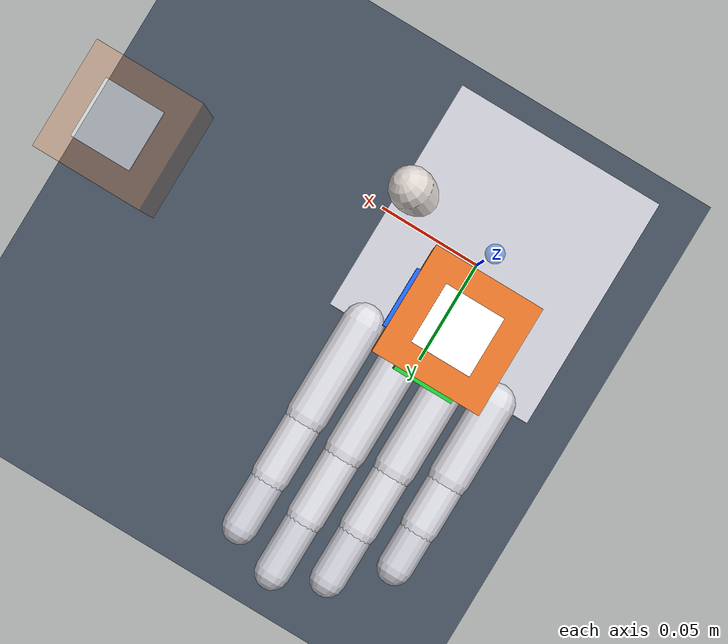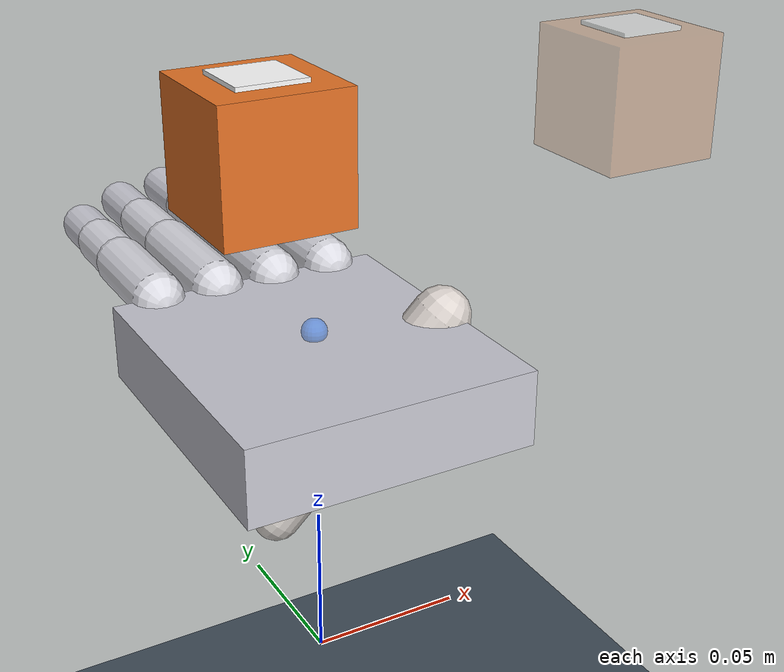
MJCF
<mujoco model="ffai_dexhand_inhand">
  <compiler angle="radian" autolimits="true"/>
  <option timestep="0.002" integrator="implicitfast" cone="elliptic" impratio="10">
    <flag multiccd="enable"/>
  </option>

  <visual>
    <global offwidth="1280" offheight="720"/>
    <quality shadowsize="2048"/>
    <headlight diffuse="0.7 0.7 0.7" ambient="0.35 0.35 0.35" specular="0.2 0.2 0.2"/>
  </visual>

  <default>
    <geom friction="1.0 0.02 0.001" solref="0.01 1" solimp="0.95 0.99 0.001"/>
    <joint type="hinge" damping="0.05" armature="0.002" frictionloss="0.002"/>
  </default>

  <asset>
    <texture name="sky" type="skybox" builtin="gradient" rgb1="0.5 0.7 0.9" rgb2="0.1 0.15 0.25" width="256" height="256"/>
    <texture name="grid" type="2d" builtin="checker" rgb1="0.2 0.25 0.3" rgb2="0.3 0.35 0.4" width="300" height="300"/>
    <material name="grid" texture="grid" texrepeat="6 6" reflectance="0.1"/>
    <material name="cube" rgba="0.90 0.45 0.15 1" reflectance="0.05"/>
  </asset>

  <worldbody>
    <light name="top" pos="0 0 0.6" dir="0 0 -1" diffuse="0.8 0.8 0.8"/>
    <light name="side" pos="0.4 -0.3 0.5" dir="-0.5 0.4 -0.7" diffuse="0.4 0.4 0.4"/>
    <geom name="floor" type="plane" pos="0 0 -0.15" size="1 1 0.05" material="grid"/>

    <!-- Mounted palm, fingers pointing up (+Y), palm facing camera (+Z). -->
    <body name="palm" pos="0 0 0.10">
      <geom name="palm" type="box" size="0.045 0.05 0.012" rgba="0.78 0.78 0.82 1"/>
      <site name="palm_center" pos="0 0 0.0140" size="0.004" rgba="0.2 0.5 1 0.5"/>

      <body name="index_prox" pos="0.0300 0.0500 0.0120">
        <joint name="index_abd" axis="0 0 1" range="-0.35 0.35"/>
        <joint name="index_mcp" axis="1 0 0" range="-0.2 1.6"/>
        <geom type="capsule" fromto="0 0 0 0 0.0420 0" size="0.0085" rgba="0.85 0.85 0.88 1"/>
        <body name="index_mid" pos="0 0.0420 0">
          <joint name="index_pip" axis="1 0 0" range="0 1.7"/>
          <geom type="capsule" fromto="0 0 0 0 0.0273 0" size="0.0078" rgba="0.85 0.85 0.88 1"/>
          <body name="index_dist" pos="0 0.0273 0">
            <joint name="index_dip" axis="1 0 0" range="0 1.6"/>
            <geom type="capsule" fromto="0 0 0 0 0.0231 0" size="0.0072" rgba="0.80 0.80 0.84 1"/>
            <site name="index_tip" pos="0 0.0231 0" size="0.006" rgba="0.1 0.8 0.3 0.6"/>
          </body>
        </body>
      </body>

      <body name="middle_prox" pos="0.0100 0.0500 0.0120">
        <joint name="middle_abd" axis="0 0 1" range="-0.35 0.35"/>
        <joint name="middle_mcp" axis="1 0 0" range="-0.2 1.6"/>
        <geom type="capsule" fromto="0 0 0 0 0.0460 0" size="0.0085" rgba="0.85 0.85 0.88 1"/>
        <body name="middle_mid" pos="0 0.0460 0">
          <joint name="middle_pip" axis="1 0 0" range="0 1.7"/>
          <geom type="capsule" fromto="0 0 0 0 0.0299 0" size="0.0078" rgba="0.85 0.85 0.88 1"/>
          <body name="middle_dist" pos="0 0.0299 0">
            <joint name="middle_dip" axis="1 0 0" range="0 1.6"/>
            <geom type="capsule" fromto="0 0 0 0 0.0253 0" size="0.0072" rgba="0.80 0.80 0.84 1"/>
            <site name="middle_tip" pos="0 0.0253 0" size="0.006" rgba="0.1 0.8 0.3 0.6"/>
          </body>
        </body>
      </body>

      <body name="ring_prox" pos="-0.0100 0.0500 0.0120">
        <joint name="ring_abd" axis="0 0 1" range="-0.35 0.35"/>
        <joint name="ring_mcp" axis="1 0 0" range="-0.2 1.6"/>
        <geom type="capsule" fromto="0 0 0 0 0.0420 0" size="0.0085" rgba="0.85 0.85 0.88 1"/>
        <body name="ring_mid" pos="0 0.0420 0">
          <joint name="ring_pip" axis="1 0 0" range="0 1.7"/>
          <geom type="capsule" fromto="0 0 0 0 0.0273 0" size="0.0078" rgba="0.85 0.85 0.88 1"/>
          <body name="ring_dist" pos="0 0.0273 0">
            <joint name="ring_dip" axis="1 0 0" range="0 1.6"/>
            <geom type="capsule" fromto="0 0 0 0 0.0231 0" size="0.0072" rgba="0.80 0.80 0.84 1"/>
            <site name="ring_tip" pos="0 0.0231 0" size="0.006" rgba="0.1 0.8 0.3 0.6"/>
          </body>
        </body>
      </body>

      <body name="pinky_prox" pos="-0.0300 0.0500 0.0120">
        <joint name="pinky_abd" axis="0 0 1" range="-0.35 0.35"/>
        <joint name="pinky_mcp" axis="1 0 0" range="-0.2 1.6"/>
        <geom type="capsule" fromto="0 0 0 0 0.0340 0" size="0.0085" rgba="0.85 0.85 0.88 1"/>
        <body name="pinky_mid" pos="0 0.0340 0">
          <joint name="pinky_pip" axis="1 0 0" range="0 1.7"/>
          <geom type="capsule" fromto="0 0 0 0 0.0221 0" size="0.0078" rgba="0.85 0.85 0.88 1"/>
          <body name="pinky_dist" pos="0 0.0221 0">
            <joint name="pinky_dip" axis="1 0 0" range="0 1.6"/>
            <geom type="capsule" fromto="0 0 0 0 0.0187 0" size="0.0072" rgba="0.80 0.80 0.84 1"/>
            <site name="pinky_tip" pos="0 0.0187 0" size="0.006" rgba="0.1 0.8 0.3 0.6"/>
          </body>
        </body>
      </body>

      <body name="thumb_prox" pos="0.0410 -0.005 0.0120" euler="0 -0.9 1.4">
        <joint name="thumb_cmc_abd" axis="0 0 1" range="-0.2 1.2"/>
        <joint name="thumb_cmc_flex" axis="1 0 0" range="-0.2 1.0"/>
        <geom type="capsule" fromto="0 0 0 0 0.0380 0" size="0.0094" rgba="0.85 0.82 0.80 1"/>
        <body name="thumb_mid" pos="0 0.0380 0">
          <joint name="thumb_mcp" axis="1 0 0" range="0 1.3"/>
          <geom type="capsule" fromto="0 0 0 0 0.0247 0" size="0.0085" rgba="0.85 0.82 0.80 1"/>
          <body name="thumb_dist" pos="0 0.0247 0">
            <joint name="thumb_ip" axis="1 0 0" range="0 1.4"/>
            <geom type="capsule" fromto="0 0 0 0 0.0209 0" size="0.0077" rgba="0.80 0.78 0.76 1"/>
            <site name="thumb_tip" pos="0 0.0209 0" size="0.006" rgba="0.1 0.8 0.3 0.6"/>
          </body>
        </body>
      </body>
    </body>

    <!-- Manipulated object: a cube with a free joint, resting on the fingers. -->
    <body name="object" pos="0 0.035 0.16">
      <freejoint name="object_free"/>
      <geom name="object" type="box" size="0.022 0.022 0.022" material="cube" mass="0.05"/>
      <site name="obj_site" pos="0 0 0" size="0.004" rgba="1 1 1 0.4"/>
      <!-- coloured face markers so rotation is visible in renders -->
      <geom type="box" pos="0 0 0.0225" size="0.012 0.012 0.001" rgba="1 1 1 1" contype="0" conaffinity="0"/>
      <geom type="box" pos="0.0225 0 0" size="0.001 0.012 0.012" rgba="0.1 0.4 1 1" contype="0" conaffinity="0"/>
      <geom type="box" pos="0 0.0225 0" size="0.012 0.001 0.012" rgba="0.1 0.8 0.2 1" contype="0" conaffinity="0"/>
    </body>

    <!-- Visual target orientation (mocap, no physics). -->
    <body name="goal" mocap="true" pos="0.14 0.035 0.16">
      <geom type="box" size="0.022 0.022 0.022" rgba="0.9 0.45 0.15 0.25" contype="0" conaffinity="0"/>
      <geom type="box" pos="0 0 0.0225" size="0.012 0.012 0.001" rgba="1 1 1 0.5" contype="0" conaffinity="0"/>
      <geom type="box" pos="0.0225 0 0" size="0.001 0.012 0.012" rgba="0.1 0.4 1 0.5" contype="0" conaffinity="0"/>
    </body>
  </worldbody>

  <actuator>
    <position name="act_index_abd" joint="index_abd" kp="18.0" kv="0.9" ctrlrange="-0.35 1.7"/>
    <position name="act_index_mcp" joint="index_mcp" kp="18.0" kv="0.9" ctrlrange="-0.35 1.7"/>
    <position name="act_index_pip" joint="index_pip" kp="18.0" kv="0.9" ctrlrange="-0.35 1.7"/>
    <position name="act_index_dip" joint="index_dip" kp="18.0" kv="0.9" ctrlrange="-0.35 1.7"/>
    <position name="act_middle_abd" joint="middle_abd" kp="18.0" kv="0.9" ctrlrange="-0.35 1.7"/>
    <position name="act_middle_mcp" joint="middle_mcp" kp="18.0" kv="0.9" ctrlrange="-0.35 1.7"/>
    <position name="act_middle_pip" joint="middle_pip" kp="18.0" kv="0.9" ctrlrange="-0.35 1.7"/>
    <position name="act_middle_dip" joint="middle_dip" kp="18.0" kv="0.9" ctrlrange="-0.35 1.7"/>
    <position name="act_ring_abd" joint="ring_abd" kp="18.0" kv="0.9" ctrlrange="-0.35 1.7"/>
    <position name="act_ring_mcp" joint="ring_mcp" kp="18.0" kv="0.9" ctrlrange="-0.35 1.7"/>
    <position name="act_ring_pip" joint="ring_pip" kp="18.0" kv="0.9" ctrlrange="-0.35 1.7"/>
    <position name="act_ring_dip" joint="ring_dip" kp="18.0" kv="0.9" ctrlrange="-0.35 1.7"/>
    <position name="act_pinky_abd" joint="pinky_abd" kp="18.0" kv="0.9" ctrlrange="-0.35 1.7"/>
    <position name="act_pinky_mcp" joint="pinky_mcp" kp="18.0" kv="0.9" ctrlrange="-0.35 1.7"/>
    <position name="act_pinky_pip" joint="pinky_pip" kp="18.0" kv="0.9" ctrlrange="-0.35 1.7"/>
    <position name="act_pinky_dip" joint="pinky_dip" kp="18.0" kv="0.9" ctrlrange="-0.35 1.7"/>
    <position name="act_thumb_cmc_abd" joint="thumb_cmc_abd" kp="22.0" kv="1.1" ctrlrange="-0.2 1.2"/>
    <position name="act_thumb_cmc_flex" joint="thumb_cmc_flex" kp="22.0" kv="1.1" ctrlrange="-0.2 1.0"/>
    <position name="act_thumb_mcp" joint="thumb_mcp" kp="22.0" kv="1.1" ctrlrange="0 1.3"/>
    <position name="act_thumb_ip" joint="thumb_ip" kp="22.0" kv="1.1" ctrlrange="0 1.4"/>
  </actuator>

  <sensor>
    <touch name="touch_index" site="index_tip"/>
    <touch name="touch_middle" site="middle_tip"/>
    <touch name="touch_ring" site="ring_tip"/>
    <touch name="touch_pinky" site="pinky_tip"/>
    <touch name="touch_thumb" site="thumb_tip"/>
    <framepos name="object_pos" objtype="site" objname="obj_site"/>
    <framequat name="object_quat" objtype="body" objname="object"/>
    <framelinvel name="object_linvel" objtype="body" objname="object"/>
    <frameangvel name="object_angvel" objtype="body" objname="object"/>
  </sensor>

  <keyframe>
    <!-- 'ready' pose: fingers slightly curled to cradle the cube. -->
    <key name="ready"
         ctrl="0.05 0.55 0.75 0.55 0.05 0.55 0.75 0.55 0.05 0.55 0.75 0.55 0.05 0.55 0.75 0.55 0.7 0.5 0.6 0.6"/>
  </keyframe>
</mujoco>
